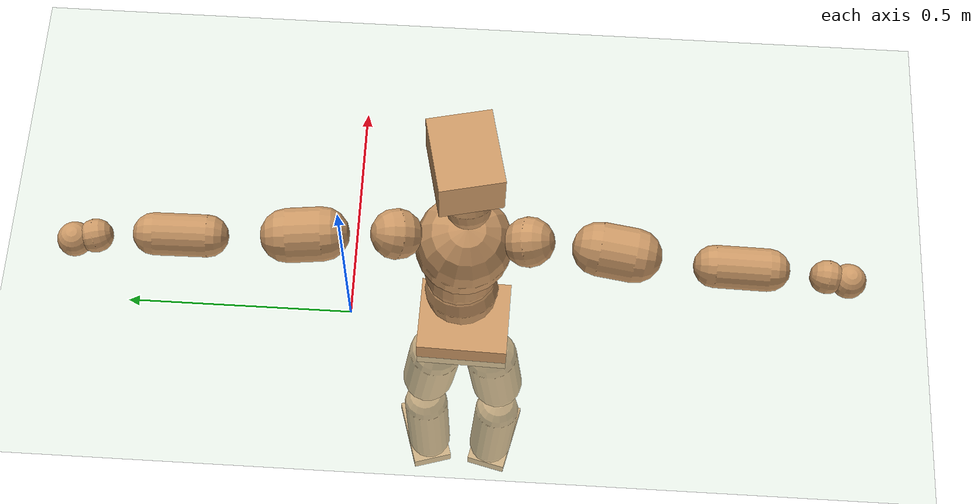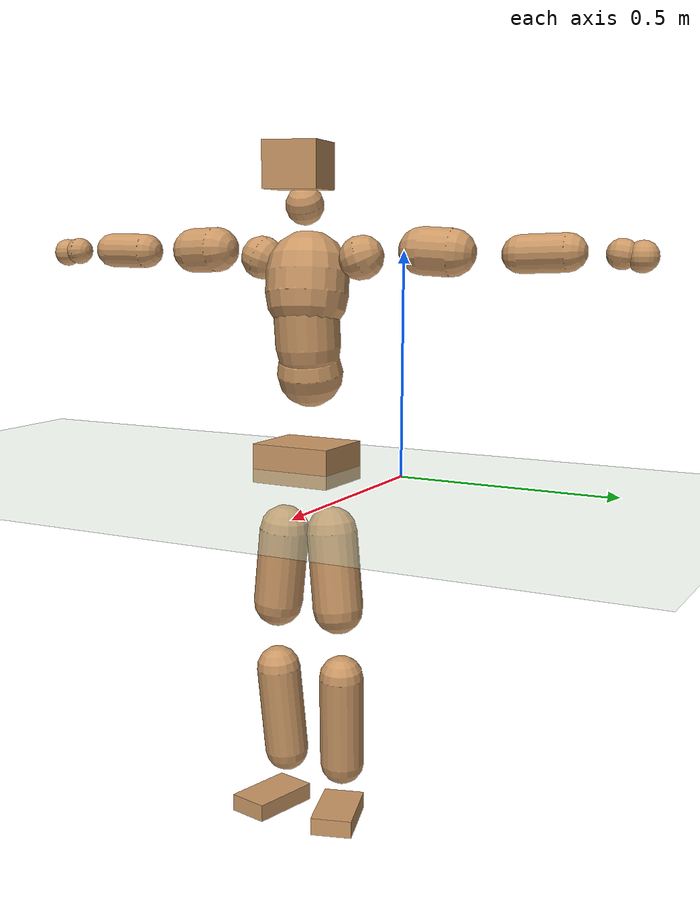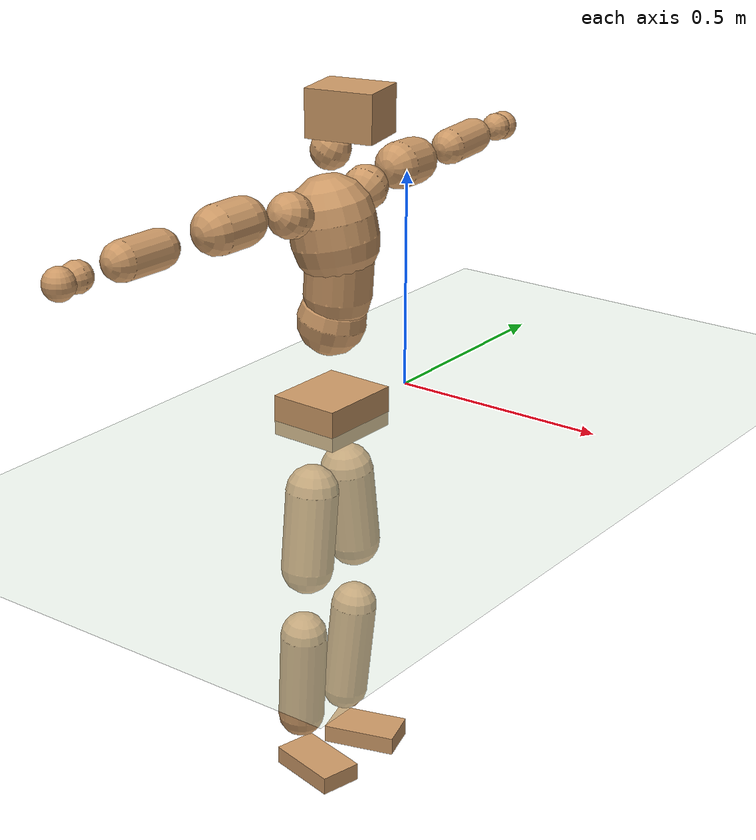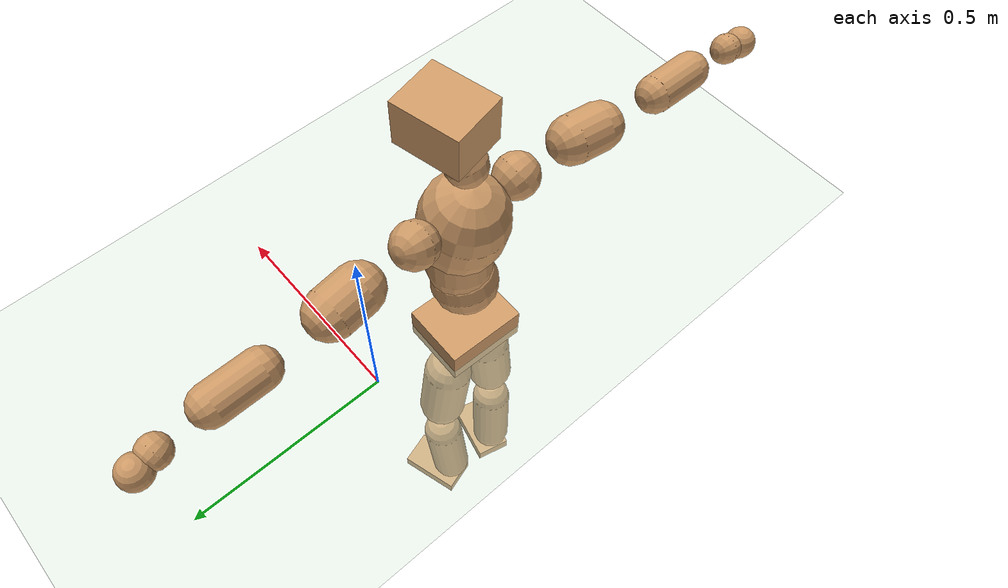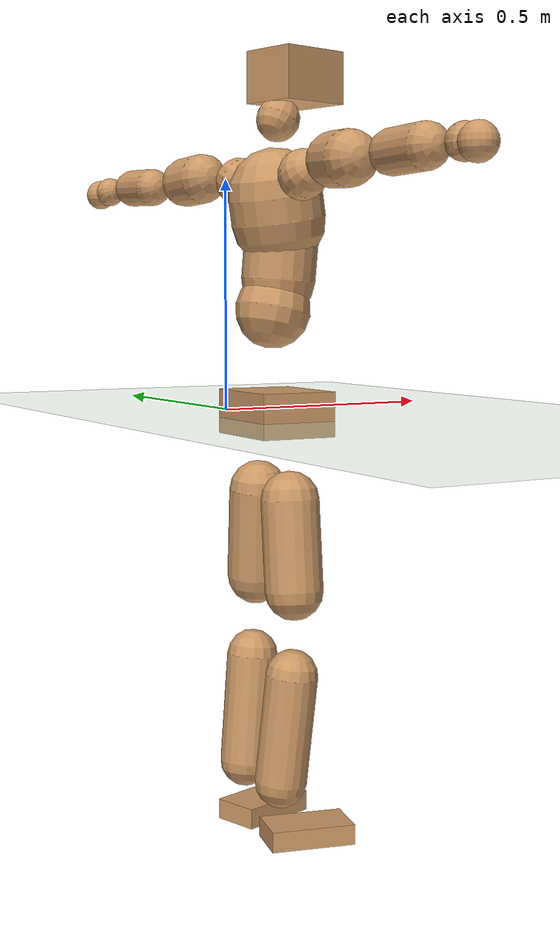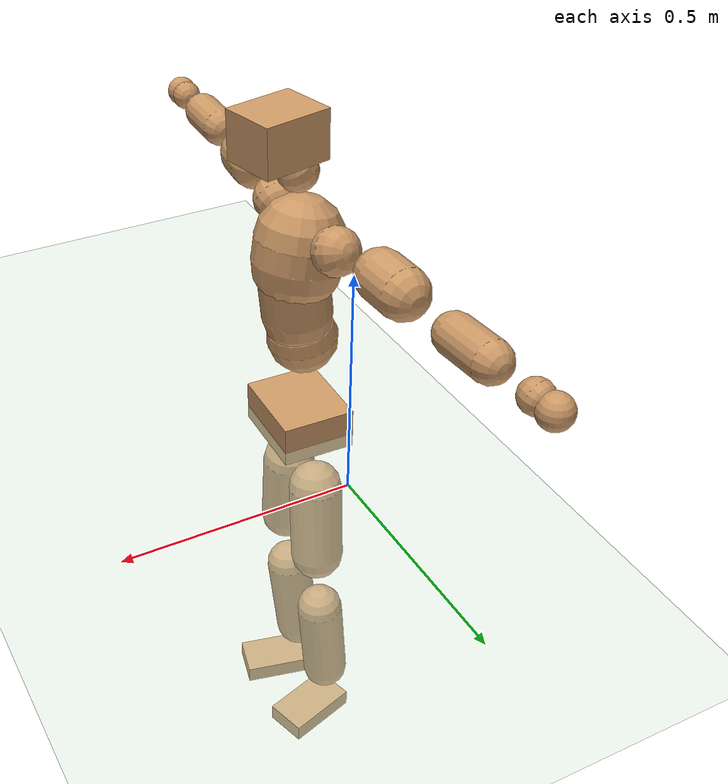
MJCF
<mujoco model="humanoid">
  <compiler coordinate="local" angle="radian"/>
  <default>
    <joint damping="0.0" armature="0.01" stiffness="0.0" limited="true"/>
    <geom conaffinity="1" condim="3" contype="7" margin="0.001" rgba="0.8 0.6 .4 1"/>
  </default>
  <asset>
    <texture type="skybox" builtin="gradient" rgb1=".4 .5 .6" rgb2="0 0 0" width="100" height="100"/>
    <texture builtin="flat" height="1278" mark="cross" markrgb="1 1 1" name="texgeom" random="0.01" rgb1="0.8 0.6 0.4" rgb2="0.8 0.6 0.4" type="cube" width="127"/>
    <texture builtin="checker" height="100" name="texplane" rgb1="0 0 0" rgb2="0.8 0.8 0.8" type="2d" width="100"/>
    <material name="MatPlane" reflectance="0.5" shininess="1" specular="1" texrepeat="60 60" texture="texplane"/>
    <material name="geom" texture="texgeom" texuniform="true"/>
  </asset>
  <worldbody>
    <light cutoff="100" diffuse="1 1 1" dir="-0 0 -1.3" directional="true" exponent="1" pos="0 0 1.3" specular=".1 .1 .1"/>
    <geom conaffinity="1" condim="3" name="floor" pos="0 0 0" rgba="0.8 0.9 0.8 1" size="100 100 .2" type="plane" material="MatPlane"/>
    <body name="Pelvis" pos="-0.0054 -0.2533 0.0195">
      <freejoint name="Pelvis"/>
      <geom type="box" contype="1" conaffinity="1" density="5359.374982" pos="-0.0114 0.0003 -0.0081" size="0.0816 0.0986 0.0458" quat="0.9999 0.0000 0.0000 -0.0129" name="Pelvis"/>
      <body name="L_Hip" pos="-0.0213 0.0537 -0.0831">
        <joint name="L_Hip_x" type="hinge" pos="0 0 0" axis="1 0 0" stiffness="1600" damping="160" armature="0.02" range="-180.0000 180.0000"/>
        <joint name="L_Hip_y" type="hinge" pos="0 0 0" axis="0 1 0" stiffness="1600" damping="160" armature="0.02" range="-180.0000 180.0000"/>
        <joint name="L_Hip_z" type="hinge" pos="0 0 0" axis="0 0 1" stiffness="1600" damping="160" armature="0.02" range="-180.0000 180.0000"/>
        <geom type="capsule" contype="1" conaffinity="1" density="2040.816327" size="0.0603" fromto="0.0026 0.0096 -0.0897 0.0080 0.0294 -0.2757" name="L_Hip"/>
        <body name="L_Knee" pos="0.0106 0.039 -0.3655">
          <joint name="L_Knee_x" type="hinge" pos="0 0 0" axis="1 0 0" stiffness="1600" damping="160" armature="0.02" range="-180.0000 180.0000"/>
          <joint name="L_Knee_y" type="hinge" pos="0 0 0" axis="0 1 0" stiffness="1600" damping="160" armature="0.02" range="-180.0000 180.0000"/>
          <joint name="L_Knee_z" type="hinge" pos="0 0 0" axis="0 0 1" stiffness="1600" damping="160" armature="0.02" range="-180.0000 180.0000"/>
          <geom type="capsule" contype="1" conaffinity="1" density="1234.567901" size="0.0536" fromto="-0.0078 -0.0030 -0.0832 -0.0289 -0.0111 -0.3102" name="L_Knee"/>
          <body name="L_Ankle" pos="-0.0367 -0.0141 -0.3933">
            <joint name="L_Ankle_x" type="hinge" pos="0 0 0" axis="1 0 0" stiffness="1600" damping="160" armature="0.02" range="-180.0000 180.0000"/>
            <joint name="L_Ankle_y" type="hinge" pos="0 0 0" axis="0 1 0" stiffness="1600" damping="160" armature="0.02" range="-180.0000 180.0000"/>
            <joint name="L_Ankle_z" type="hinge" pos="0 0 0" axis="0 0 1" stiffness="1600" damping="160" armature="0.02" range="-180.0000 180.0000"/>
            <geom type="box" contype="1" conaffinity="1" density="1000.000058" pos="0.0589 0.0175 -0.0283" size="0.0854 0.0494 0.0212" quat="0.9896 0.0000 0.0000 0.1435" name="L_Ankle"/>
            <body name="L_Toe" pos="0.1178 0.0349 -0.0566">
              <joint name="L_Toe_x" type="hinge" pos="0 0 0" axis="1 0 0" stiffness="1000" damping="100" armature="0.02" range="-180.0000 180.0000"/>
              <joint name="L_Toe_y" type="hinge" pos="0 0 0" axis="0 1 0" stiffness="1000" damping="100" armature="0.02" range="-180.0000 180.0000"/>
              <joint name="L_Toe_z" type="hinge" pos="0 0 0" axis="0 0 1" stiffness="1000" damping="100" armature="0.02" range="-180.0000 180.0000"/>
              <geom type="box" contype="1" conaffinity="1" density="8065415.90959" pos="0.0000 0.0000 0.0274" size="0.0011 0.0025 0.001" quat="0.9889 0.0000 0.0000 0.1489" name="L_Toe"/>
            </body>
          </body>
        </body>
      </body>
      <body name="R_Hip" pos="-0.0164 -0.0559 -0.0917">
        <joint name="R_Hip_x" type="hinge" pos="0 0 0" axis="1 0 0" stiffness="1600" damping="160" armature="0.02" range="-180.0000 180.0000"/>
        <joint name="R_Hip_y" type="hinge" pos="0 0 0" axis="0 1 0" stiffness="1600" damping="160" armature="0.02" range="-180.0000 180.0000"/>
        <joint name="R_Hip_z" type="hinge" pos="0 0 0" axis="0 0 1" stiffness="1600" damping="160" armature="0.02" range="-180.0000 180.0000"/>
        <geom type="capsule" contype="1" conaffinity="1" density="2040.816327" size="0.0597" fromto="-0.0006 -0.0094 -0.0892 -0.0017 -0.0286 -0.2725" name="R_Hip"/>
        <body name="R_Knee" pos="-0.0022 -0.0379 -0.3617">
          <joint name="R_Knee_x" type="hinge" pos="0 0 0" axis="1 0 0" stiffness="1600" damping="160" armature="0.02" range="-180.0000 180.0000"/>
          <joint name="R_Knee_y" type="hinge" pos="0 0 0" axis="0 1 0" stiffness="1600" damping="160" armature="0.02" range="-180.0000 180.0000"/>
          <joint name="R_Knee_z" type="hinge" pos="0 0 0" axis="0 0 1" stiffness="1600" damping="160" armature="0.02" range="-180.0000 180.0000"/>
          <geom type="capsule" contype="1" conaffinity="1" density="1234.567901" size="0.0537" fromto="-0.0074 0.0041 -0.0832 -0.0269 0.0150 -0.3033" name="R_Knee"/>
          <body name="R_Ankle" pos="-0.0343 0.0191 -0.3866">
            <joint name="R_Ankle_x" type="hinge" pos="0 0 0" axis="1 0 0" stiffness="1600" damping="160" armature="0.02" range="-180.0000 180.0000"/>
            <joint name="R_Ankle_y" type="hinge" pos="0 0 0" axis="0 1 0" stiffness="1600" damping="160" armature="0.02" range="-180.0000 180.0000"/>
            <joint name="R_Ankle_z" type="hinge" pos="0 0 0" axis="0 0 1" stiffness="1600" damping="160" armature="0.02" range="-180.0000 180.0000"/>
            <geom type="box" contype="1" conaffinity="1" density="1000.000017" pos="0.0635 -0.0152 -0.0282" size="0.0874 0.0494 0.0209" quat="0.9931 0.0000 0.0000 -0.1174" name="R_Ankle"/>
            <body name="R_Toe" pos="0.1269 -0.0304 -0.0563">
              <joint name="R_Toe_x" type="hinge" pos="0 0 0" axis="1 0 0" stiffness="1000" damping="100" armature="0.02" range="-180.0000 180.0000"/>
              <joint name="R_Toe_y" type="hinge" pos="0 0 0" axis="0 1 0" stiffness="1000" damping="100" armature="0.02" range="-180.0000 180.0000"/>
              <joint name="R_Toe_z" type="hinge" pos="0 0 0" axis="0 0 1" stiffness="1000" damping="100" armature="0.02" range="-180.0000 180.0000"/>
              <geom type="box" contype="1" conaffinity="1" density="8095884.178555" pos="0.0000 0.0000 0.0294" size="0.001 0.0024 0.0011" quat="0.9941 0.0000 0.0000 -0.1083" name="R_Toe"/>
            </body>
          </body>
        </body>
      </body>
      <body name="Torso" pos="-0.031 0.0039 0.1263">
        <joint name="Torso_x" type="hinge" pos="0 0 0" axis="1 0 0" stiffness="2000" damping="200" armature="0.02" range="-180.0000 180.0000"/>
        <joint name="Torso_y" type="hinge" pos="0 0 0" axis="0 1 0" stiffness="2000" damping="200" armature="0.02" range="-180.0000 180.0000"/>
        <joint name="Torso_z" type="hinge" pos="0 0 0" axis="0 0 1" stiffness="2000" damping="200" armature="0.02" range="-180.0000 180.0000"/>
        <geom type="capsule" contype="1" conaffinity="1" density="2040.816327" size="0.0773" fromto="0.0156 0.0031 0.0756 0.0151 0.0030 0.0734" name="Torso"/>
        <body name="Spine" pos="0.0306 0.006 0.149">
          <joint name="Spine_x" type="hinge" pos="0 0 0" axis="1 0 0" stiffness="2000" damping="200" armature="0.02" range="-180.0000 180.0000"/>
          <joint name="Spine_y" type="hinge" pos="0 0 0" axis="0 1 0" stiffness="2000" damping="200" armature="0.02" range="-180.0000 180.0000"/>
          <joint name="Spine_z" type="hinge" pos="0 0 0" axis="0 0 1" stiffness="2000" damping="200" armature="0.02" range="-180.0000 180.0000"/>
          <geom type="capsule" contype="1" conaffinity="1" density="2040.816327" size="0.0756" fromto="0.0062 -0.0014 0.0753 -0.0012 0.0003 -0.0149" name="Spine"/>
          <body name="Chest" pos="0.005 -0.0012 0.0604">
            <joint name="Chest_x" type="hinge" pos="0 0 0" axis="1 0 0" stiffness="2000" damping="200" armature="0.02" range="-180.0000 180.0000"/>
            <joint name="Chest_y" type="hinge" pos="0 0 0" axis="0 1 0" stiffness="2000" damping="200" armature="0.02" range="-180.0000 180.0000"/>
            <joint name="Chest_z" type="hinge" pos="0 0 0" axis="0 0 1" stiffness="2000" damping="200" armature="0.02" range="-180.0000 180.0000"/>
            <geom type="capsule" contype="1" conaffinity="1" density="2040.816327" size="0.0963" fromto="-0.0172 -0.0055 0.0946 -0.0083 -0.0027 0.0456" name="Chest"/>
            <body name="Neck" pos="-0.0356 -0.0147 0.2034">
              <joint name="Neck_x" type="hinge" pos="0 0 0" axis="1 0 0" stiffness="1000" damping="100" armature="0.02" range="-180.0000 180.0000"/>
              <joint name="Neck_y" type="hinge" pos="0 0 0" axis="0 1 0" stiffness="1000" damping="100" armature="0.02" range="-180.0000 180.0000"/>
              <joint name="Neck_z" type="hinge" pos="0 0 0" axis="0 0 1" stiffness="1000" damping="100" armature="0.02" range="-180.0000 180.0000"/>
              <geom type="capsule" contype="1" conaffinity="1" density="1000" size="0.044" fromto="0.0214 0.0040 0.0414 0.0224 0.0042 0.0432" name="Neck"/>
              <body name="Head" pos="0.0438 0.0082 0.0846">
                <joint name="Head_x" type="hinge" pos="0 0 0" axis="1 0 0" stiffness="1000" damping="100" armature="0.02" range="-180.0000 180.0000"/>
                <joint name="Head_y" type="hinge" pos="0 0 0" axis="0 1 0" stiffness="1000" damping="100" armature="0.02" range="-180.0000 180.0000"/>
                <joint name="Head_z" type="hinge" pos="0 0 0" axis="0 0 1" stiffness="1000" damping="100" armature="0.02" range="-180.0000 180.0000"/>
                <geom type="box" contype="1" conaffinity="1" density="2249.999933" pos="0.0229 0.0051 0.0433" size="0.0757 0.062 0.0522" quat="0.9940 0.0000 0.0000 0.1094" name="Head"/>
              </body>
            </body>
            <body name="L_Thorax" pos="-0.0175 0.0678 0.1097">
              <joint name="L_Thorax_x" type="hinge" pos="0 0 0" axis="1 0 0" stiffness="1000" damping="100" armature="0.02" range="-180.0000 180.0000"/>
              <joint name="L_Thorax_y" type="hinge" pos="0 0 0" axis="0 1 0" stiffness="1000" damping="100" armature="0.02" range="-180.0000 180.0000"/>
              <joint name="L_Thorax_z" type="hinge" pos="0 0 0" axis="0 0 1" stiffness="1000" damping="100" armature="0.02" range="-180.0000 180.0000"/>
              <geom type="capsule" contype="1" conaffinity="1" density="1000" size="0.0505" fromto="-0.0084 0.0584 0.0201 -0.0087 0.0602 0.0208" name="L_Thorax"/>
              <body name="L_Shoulder" pos="-0.0171 0.1186 0.0409">
                <joint name="L_Shoulder_x" type="hinge" pos="0 0 0" axis="1 0 0" stiffness="1000" damping="100" armature="0.02" range="-720.0000 720.0000"/>
                <joint name="L_Shoulder_y" type="hinge" pos="0 0 0" axis="0 1 0" stiffness="1000" damping="100" armature="0.02" range="-720.0000 720.0000"/>
                <joint name="L_Shoulder_z" type="hinge" pos="0 0 0" axis="0 0 1" stiffness="1000" damping="100" armature="0.02" range="-720.0000 720.0000"/>
                <geom type="capsule" contype="1" conaffinity="1" density="1000" size="0.0532" fromto="-0.0072 0.0827 -0.0045 -0.0131 0.1513 -0.0082" name="L_Shoulder"/>
                <body name="L_Elbow" pos="-0.0203 0.234 -0.0126">
                  <joint name="L_Elbow_x" type="hinge" pos="0 0 0" axis="1 0 0" stiffness="1000" damping="100" armature="0.02" range="-720.0000 720.0000"/>
                  <joint name="L_Elbow_y" type="hinge" pos="0 0 0" axis="0 1 0" stiffness="1000" damping="100" armature="0.02" range="-720.0000 720.0000"/>
                  <joint name="L_Elbow_z" type="hinge" pos="0 0 0" axis="0 0 1" stiffness="1000" damping="100" armature="0.02" range="-720.0000 720.0000"/>
                  <geom type="capsule" contype="1" conaffinity="1" density="1000" size="0.0415" fromto="-0.0023 0.0714 0.0028 -0.0055 0.1741 0.0069" name="L_Elbow"/>
                  <body name="L_Wrist" pos="-0.0078 0.2455 0.0097">
                    <joint name="L_Wrist_x" type="hinge" pos="0 0 0" axis="1 0 0" stiffness="600" damping="60" armature="0.02" range="-180.0000 180.0000"/>
                    <joint name="L_Wrist_y" type="hinge" pos="0 0 0" axis="0 1 0" stiffness="600" damping="60" armature="0.02" range="-180.0000 180.0000"/>
                    <joint name="L_Wrist_z" type="hinge" pos="0 0 0" axis="0 0 1" stiffness="600" damping="60" armature="0.02" range="-180.0000 180.0000"/>
                    <geom type="capsule" contype="1" conaffinity="1" density="1000" size="0.0328" fromto="-0.0071 0.0402 -0.0049 -0.0075 0.0422 -0.0052" name="L_Wrist"/>
                    <body name="L_Hand" pos="-0.0146 0.0823 -0.0101">
                      <joint name="L_Hand_x" type="hinge" pos="0 0 0" axis="1 0 0" stiffness="600" damping="60" armature="0.02" range="-180.0000 180.0000"/>
                      <joint name="L_Hand_y" type="hinge" pos="0 0 0" axis="0 1 0" stiffness="600" damping="60" armature="0.02" range="-180.0000 180.0000"/>
                      <joint name="L_Hand_z" type="hinge" pos="0 0 0" axis="0 0 1" stiffness="600" damping="60" armature="0.02" range="-180.0000 180.0000"/>
                      <geom type="sphere" contype="1" conaffinity="1" density="1000" size="0.0339" pos="0.0000 0.0000 0.0000" name="L_Hand"/>
                    </body>
                  </body>
                </body>
              </body>
            </body>
            <body name="R_Thorax" pos="-0.0233 -0.0777 0.1074">
              <joint name="R_Thorax_x" type="hinge" pos="0 0 0" axis="1 0 0" stiffness="1000" damping="100" armature="0.02" range="-180.0000 180.0000"/>
              <joint name="R_Thorax_y" type="hinge" pos="0 0 0" axis="0 1 0" stiffness="1000" damping="100" armature="0.02" range="-180.0000 180.0000"/>
              <joint name="R_Thorax_z" type="hinge" pos="0 0 0" axis="0 0 1" stiffness="1000" damping="100" armature="0.02" range="-180.0000 180.0000"/>
              <geom type="capsule" contype="1" conaffinity="1" density="1000" size="0.0499" fromto="-0.0036 -0.0524 0.0201 -0.0037 -0.0543 0.0208" name="R_Thorax"/>
              <body name="R_Shoulder" pos="-0.0073 -0.1068 0.0409">
                <joint name="R_Shoulder_x" type="hinge" pos="0 0 0" axis="1 0 0" stiffness="1000" damping="100" armature="0.02" range="-720.0000 720.0000"/>
                <joint name="R_Shoulder_y" type="hinge" pos="0 0 0" axis="0 1 0" stiffness="1000" damping="100" armature="0.02" range="-720.0000 720.0000"/>
                <joint name="R_Shoulder_z" type="hinge" pos="0 0 0" axis="0 0 1" stiffness="1000" damping="100" armature="0.02" range="-720.0000 720.0000"/>
                <geom type="capsule" contype="1" conaffinity="1" density="1000" size="0.053" fromto="-0.0106 -0.0822 -0.0034 -0.0194 -0.1509 -0.0063" name="R_Shoulder"/>
                <body name="R_Elbow" pos="-0.0299 -0.2331 -0.0098">
                  <joint name="R_Elbow_x" type="hinge" pos="0 0 0" axis="1 0 0" stiffness="1000" damping="100" armature="0.02" range="-720.0000 720.0000"/>
                  <joint name="R_Elbow_y" type="hinge" pos="0 0 0" axis="0 1 0" stiffness="1000" damping="100" armature="0.02" range="-720.0000 720.0000"/>
                  <joint name="R_Elbow_z" type="hinge" pos="0 0 0" axis="0 0 1" stiffness="1000" damping="100" armature="0.02" range="-720.0000 720.0000"/>
                  <geom type="capsule" contype="1" conaffinity="1" density="1000" size="0.0415" fromto="-0.0017 -0.0715 0.0010 -0.0041 -0.1741 0.0023" name="R_Elbow"/>
                  <body name="R_Wrist" pos="-0.0058 -0.2456 0.0033">
                    <joint name="R_Wrist_x" type="hinge" pos="0 0 0" axis="1 0 0" stiffness="600" damping="60" armature="0.02" range="-180.0000 180.0000"/>
                    <joint name="R_Wrist_y" type="hinge" pos="0 0 0" axis="0 1 0" stiffness="600" damping="60" armature="0.02" range="-180.0000 180.0000"/>
                    <joint name="R_Wrist_z" type="hinge" pos="0 0 0" axis="0 0 1" stiffness="600" damping="60" armature="0.02" range="-180.0000 180.0000"/>
                    <geom type="capsule" contype="1" conaffinity="1" density="1000" size="0.0326" fromto="-0.0045 -0.0403 -0.0039 -0.0047 -0.0423 -0.0040" name="R_Wrist"/>
                    <body name="R_Hand" pos="-0.0092 -0.0827 -0.0079">
                      <joint name="R_Hand_x" type="hinge" pos="0 0 0" axis="1 0 0" stiffness="600" damping="60" armature="0.02" range="-180.0000 180.0000"/>
                      <joint name="R_Hand_y" type="hinge" pos="0 0 0" axis="0 1 0" stiffness="600" damping="60" armature="0.02" range="-180.0000 180.0000"/>
                      <joint name="R_Hand_z" type="hinge" pos="0 0 0" axis="0 0 1" stiffness="600" damping="60" armature="0.02" range="-180.0000 180.0000"/>
                      <geom type="sphere" contype="1" conaffinity="1" density="1000" size="0.0337" pos="0.0000 0.0000 0.0000" name="R_Hand"/>
                    </body>
                  </body>
                </body>
              </body>
            </body>
          </body>
        </body>
      </body>
    </body>
  </worldbody>
  <actuator>
    <motor name="L_Hip_x" joint="L_Hip_x" gear="500"/>
    <motor name="L_Hip_y" joint="L_Hip_y" gear="500"/>
    <motor name="L_Hip_z" joint="L_Hip_z" gear="500"/>
    <motor name="L_Knee_x" joint="L_Knee_x" gear="500"/>
    <motor name="L_Knee_y" joint="L_Knee_y" gear="500"/>
    <motor name="L_Knee_z" joint="L_Knee_z" gear="500"/>
    <motor name="L_Ankle_x" joint="L_Ankle_x" gear="500"/>
    <motor name="L_Ankle_y" joint="L_Ankle_y" gear="500"/>
    <motor name="L_Ankle_z" joint="L_Ankle_z" gear="500"/>
    <motor name="L_Toe_x" joint="L_Toe_x" gear="500"/>
    <motor name="L_Toe_y" joint="L_Toe_y" gear="500"/>
    <motor name="L_Toe_z" joint="L_Toe_z" gear="500"/>
    <motor name="R_Hip_x" joint="R_Hip_x" gear="500"/>
    <motor name="R_Hip_y" joint="R_Hip_y" gear="500"/>
    <motor name="R_Hip_z" joint="R_Hip_z" gear="500"/>
    <motor name="R_Knee_x" joint="R_Knee_x" gear="500"/>
    <motor name="R_Knee_y" joint="R_Knee_y" gear="500"/>
    <motor name="R_Knee_z" joint="R_Knee_z" gear="500"/>
    <motor name="R_Ankle_x" joint="R_Ankle_x" gear="500"/>
    <motor name="R_Ankle_y" joint="R_Ankle_y" gear="500"/>
    <motor name="R_Ankle_z" joint="R_Ankle_z" gear="500"/>
    <motor name="R_Toe_x" joint="R_Toe_x" gear="500"/>
    <motor name="R_Toe_y" joint="R_Toe_y" gear="500"/>
    <motor name="R_Toe_z" joint="R_Toe_z" gear="500"/>
    <motor name="Torso_x" joint="Torso_x" gear="500"/>
    <motor name="Torso_y" joint="Torso_y" gear="500"/>
    <motor name="Torso_z" joint="Torso_z" gear="500"/>
    <motor name="Spine_x" joint="Spine_x" gear="500"/>
    <motor name="Spine_y" joint="Spine_y" gear="500"/>
    <motor name="Spine_z" joint="Spine_z" gear="500"/>
    <motor name="Chest_x" joint="Chest_x" gear="500"/>
    <motor name="Chest_y" joint="Chest_y" gear="500"/>
    <motor name="Chest_z" joint="Chest_z" gear="500"/>
    <motor name="Neck_x" joint="Neck_x" gear="500"/>
    <motor name="Neck_y" joint="Neck_y" gear="500"/>
    <motor name="Neck_z" joint="Neck_z" gear="500"/>
    <motor name="Head_x" joint="Head_x" gear="500"/>
    <motor name="Head_y" joint="Head_y" gear="500"/>
    <motor name="Head_z" joint="Head_z" gear="500"/>
    <motor name="L_Thorax_x" joint="L_Thorax_x" gear="500"/>
    <motor name="L_Thorax_y" joint="L_Thorax_y" gear="500"/>
    <motor name="L_Thorax_z" joint="L_Thorax_z" gear="500"/>
    <motor name="L_Shoulder_x" joint="L_Shoulder_x" gear="500"/>
    <motor name="L_Shoulder_y" joint="L_Shoulder_y" gear="500"/>
    <motor name="L_Shoulder_z" joint="L_Shoulder_z" gear="500"/>
    <motor name="L_Elbow_x" joint="L_Elbow_x" gear="500"/>
    <motor name="L_Elbow_y" joint="L_Elbow_y" gear="500"/>
    <motor name="L_Elbow_z" joint="L_Elbow_z" gear="500"/>
    <motor name="L_Wrist_x" joint="L_Wrist_x" gear="500"/>
    <motor name="L_Wrist_y" joint="L_Wrist_y" gear="500"/>
    <motor name="L_Wrist_z" joint="L_Wrist_z" gear="500"/>
    <motor name="L_Hand_x" joint="L_Hand_x" gear="500"/>
    <motor name="L_Hand_y" joint="L_Hand_y" gear="500"/>
    <motor name="L_Hand_z" joint="L_Hand_z" gear="500"/>
    <motor name="R_Thorax_x" joint="R_Thorax_x" gear="500"/>
    <motor name="R_Thorax_y" joint="R_Thorax_y" gear="500"/>
    <motor name="R_Thorax_z" joint="R_Thorax_z" gear="500"/>
    <motor name="R_Shoulder_x" joint="R_Shoulder_x" gear="500"/>
    <motor name="R_Shoulder_y" joint="R_Shoulder_y" gear="500"/>
    <motor name="R_Shoulder_z" joint="R_Shoulder_z" gear="500"/>
    <motor name="R_Elbow_x" joint="R_Elbow_x" gear="500"/>
    <motor name="R_Elbow_y" joint="R_Elbow_y" gear="500"/>
    <motor name="R_Elbow_z" joint="R_Elbow_z" gear="500"/>
    <motor name="R_Wrist_x" joint="R_Wrist_x" gear="500"/>
    <motor name="R_Wrist_y" joint="R_Wrist_y" gear="500"/>
    <motor name="R_Wrist_z" joint="R_Wrist_z" gear="500"/>
    <motor name="R_Hand_x" joint="R_Hand_x" gear="500"/>
    <motor name="R_Hand_y" joint="R_Hand_y" gear="500"/>
    <motor name="R_Hand_z" joint="R_Hand_z" gear="500"/>
  </actuator>
  <contact>
    <exclude body1="Torso" body2="Chest"/>
    <exclude body1="Head" body2="Chest"/>
    <exclude body1="R_Knee" body2="R_Toe"/>
    <exclude body1="R_Knee" body2="L_Ankle"/>
    <exclude body1="R_Knee" body2="L_Toe"/>
    <exclude body1="L_Knee" body2="L_Toe"/>
    <exclude body1="L_Knee" body2="R_Ankle"/>
    <exclude body1="L_Knee" body2="R_Toe"/>
    <exclude body1="L_Shoulder" body2="Chest"/>
    <exclude body1="R_Shoulder" body2="Chest"/>
  </contact>
  <sensor/>
  <size njmax="700" nconmax="700"/>
</mujoco>
